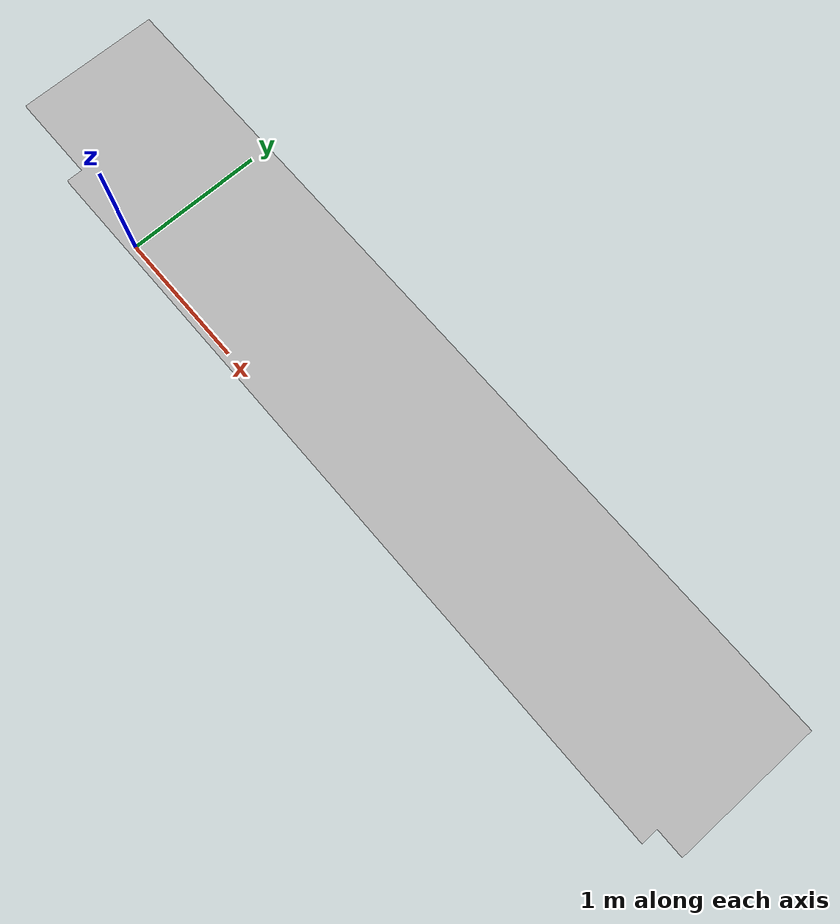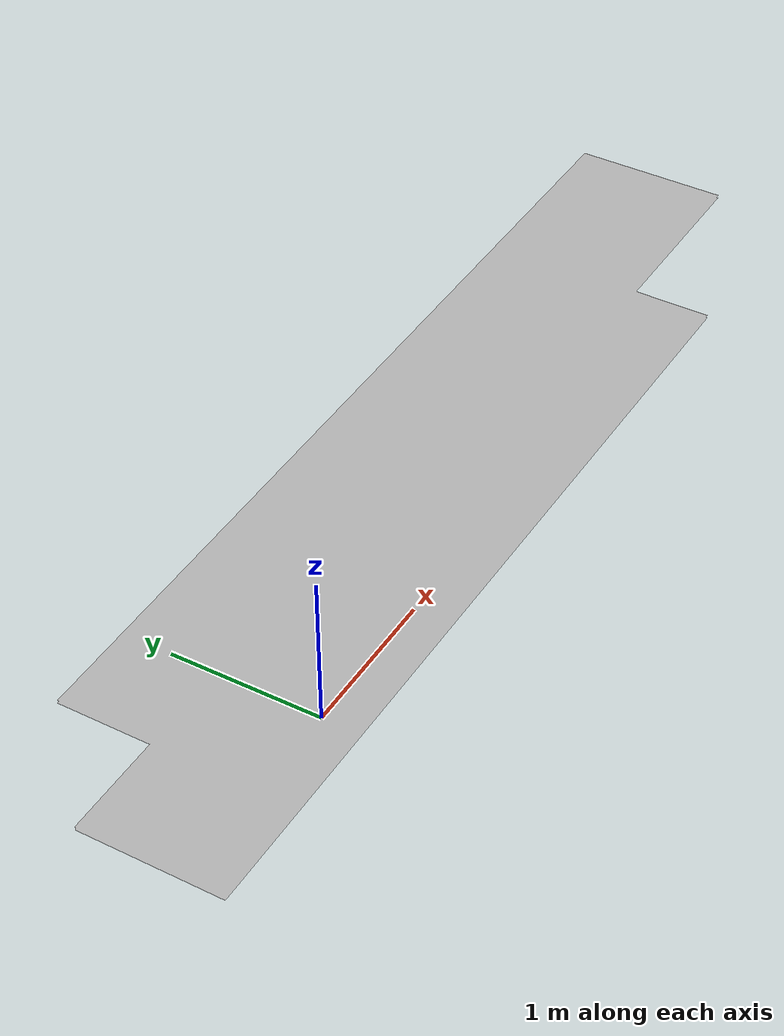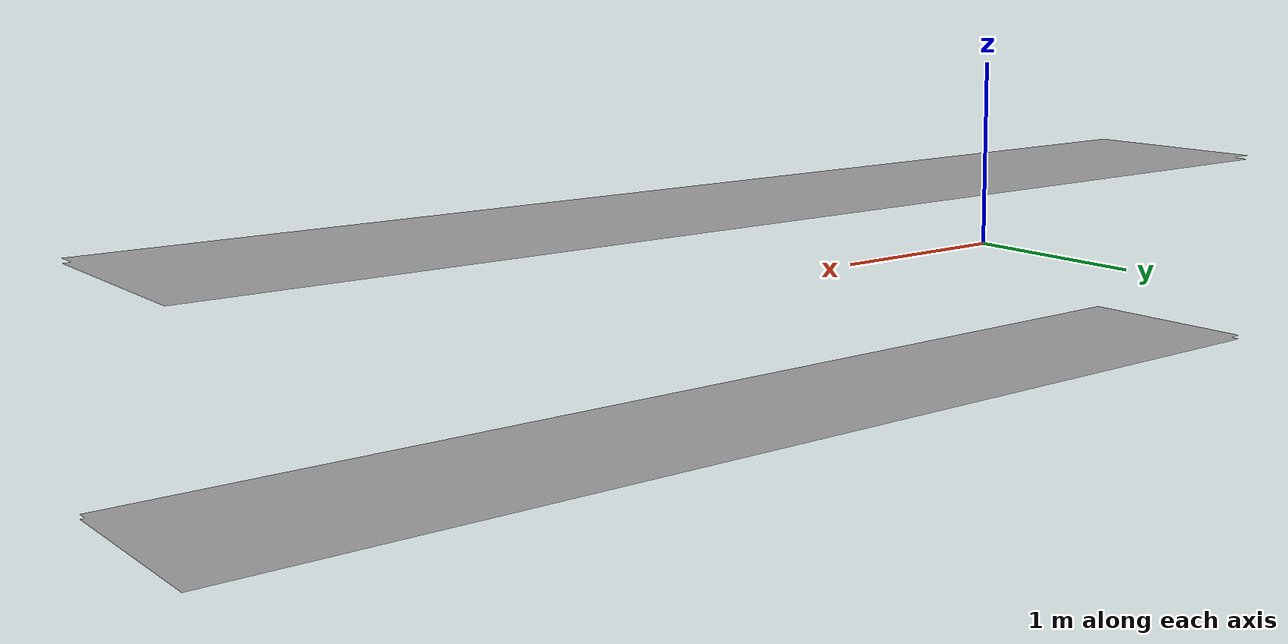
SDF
<?xml version="1.6" ?>
<sdf version="1.6">
  <model name="test_arena_1">
    <static>true</static>
    <link name="link">
      <visual name="visual">
        <geometry>
          <mesh>
            <uri>model://test_arena_1/meshes/test_arena_1.obj</uri>
          </mesh>
        </geometry>
      </visual>
      <collision name="collision">
        <geometry>
          <mesh>
            <uri>model://test_arena_1/meshes/test_arena_1.obj</uri>
          </mesh>
        </geometry>
      </collision>
    </link>
  </model>
</sdf>
